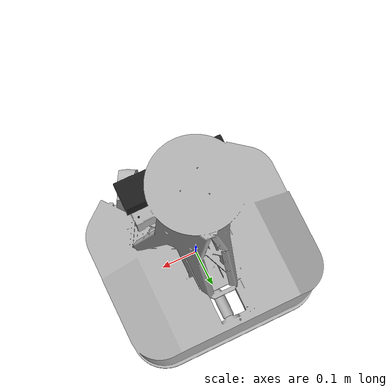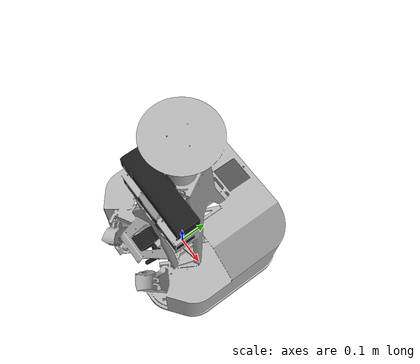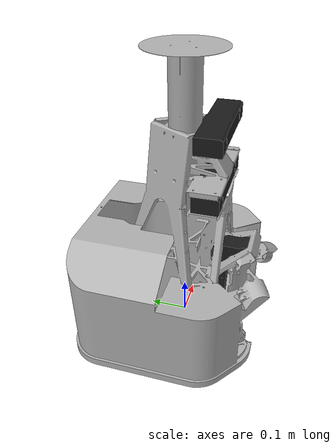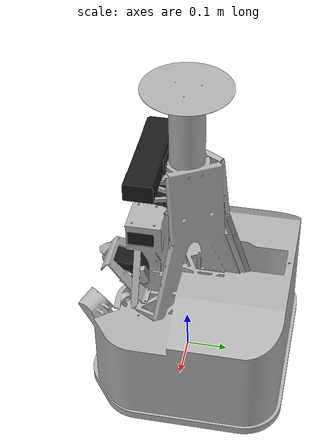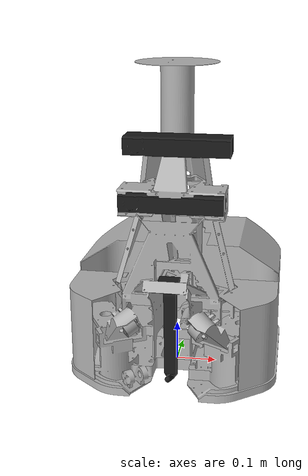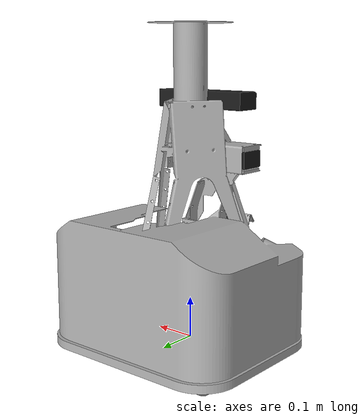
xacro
<?xml version="1.0" ?>
<robot name="rcup_urdf" xmlns:xacro="http://www.ros.org/wiki/xacro">

<xacro:include filename="$(find rcup_urdf_description)/urdf/materials.xacro" />
<xacro:include filename="$(find rcup_urdf_description)/urdf/rcup_urdf.trans" />
<xacro:include filename="$(find rcup_urdf_description)/urdf/lidar.xacro" />

<link name="base_link">
  <inertial>
    <origin xyz="-0.00165859839526905 0.016307246207622854 0.13530549609314282" rpy="0 0 0"/>
    <mass value="45.95869442945325"/>
    <inertia ixx="2.222974" iyy="2.399946" izz="1.838478" ixy="-0.009129" iyz="0.104619" ixz="-0.006104"/>
  </inertial>
  <visual>
    <origin xyz="0 0 0" rpy="0 0 0"/>
    <geometry>
      <mesh filename="package://rcup_urdf_description/meshes/base_link.stl" scale="0.001 0.001 0.001"/>
    </geometry>
    <material name="silver_default"/>
  </visual>
  <collision>
    <origin xyz="0 0 0" rpy="0 0 0"/>
    <geometry>
      <mesh filename="package://rcup_urdf_description/meshes/base_link.stl" scale="0.001 0.001 0.001"/>
    </geometry>
  </collision>
</link>

<link name="Component417_1">
  <inertial>
    <origin xyz="0.010000000000001091 -6.994287818390399e-06 -3.651771739056689e-06" rpy="0 0 0"/>
    <mass value="1.3762351375635924"/>
    <inertia ixx="0.001934" iyy="0.001007" izz="0.001019" ixy="-0.0" iyz="-0.0" ixz="0.0"/>
  </inertial>
  <visual>
    <origin xyz="-0.17 -0.167619 -0.015" rpy="0 0 0"/>
    <geometry>
      <mesh filename="package://rcup_urdf_description/meshes/Component417_1.stl" scale="0.001 0.001 0.001"/>
    </geometry>
    <material name="steel_satin"/>
  </visual>
  <collision>
    <origin xyz="-0.17 -0.167619 -0.015" rpy="0 0 0"/>
    <geometry>
      <mesh filename="package://rcup_urdf_description/meshes/Component417_1.stl" scale="0.001 0.001 0.001"/>
    </geometry>
  </collision>
</link>

<link name="wheel_v1_1">
  <inertial>
    <origin xyz="-0.010000000000000175 2.6902407044088195e-05 -7.101924573045537e-07" rpy="0 0 0"/>
    <mass value="1.3762351375635924"/>
    <inertia ixx="0.001934" iyy="0.001007" izz="0.001019" ixy="0.0" iyz="1e-06" ixz="-0.0"/>
  </inertial>
  <visual>
    <origin xyz="0.17 -0.167619 -0.015" rpy="0 0 0"/>
    <geometry>
      <mesh filename="package://rcup_urdf_description/meshes/wheel_v1_1.stl" scale="0.001 0.001 0.001"/>
    </geometry>
    <material name="steel_satin"/>
  </visual>
  <collision>
    <origin xyz="0.17 -0.167619 -0.015" rpy="0 0 0"/>
    <geometry>
      <mesh filename="package://rcup_urdf_description/meshes/wheel_v1_1.stl" scale="0.001 0.001 0.001"/>
    </geometry>
  </collision>
</link>

<link name="Component419_1">
  <inertial>
    <origin xyz="-0.010694649902391953 0.00803962610329817 0.006781847703606597" rpy="0 0 0"/>
    <mass value="0.4122786652131398"/>
    <inertia ixx="0.000106" iyy="9.9e-05" izz="9.6e-05" ixy="-1e-05" iyz="8e-06" ixz="-9e-06"/>
  </inertial>
  <visual>
    <origin xyz="-0.095008 0.214003 -0.17631" rpy="0 0 0"/>
    <geometry>
      <mesh filename="package://rcup_urdf_description/meshes/Component419_1.stl" scale="0.001 0.001 0.001"/>
    </geometry>
    <material name="steel_satin"/>
  </visual>
  <collision>
    <origin xyz="-0.095008 0.214003 -0.17631" rpy="0 0 0"/>
    <geometry>
      <mesh filename="package://rcup_urdf_description/meshes/Component419_1.stl" scale="0.001 0.001 0.001"/>
    </geometry>
  </collision>
</link>

<link name="small_roller_v1_1">
  <inertial>
    <origin xyz="0.01070386879259716 0.008003421622574586 0.006810021314246767" rpy="0 0 0"/>
    <mass value="0.41227866521313966"/>
    <inertia ixx="0.000106" iyy="9.9e-05" izz="9.6e-05" ixy="1.1e-05" iyz="8e-06" ixz="9e-06"/>
  </inertial>
  <visual>
    <origin xyz="0.095008 0.214003 -0.17631" rpy="0 0 0"/>
    <geometry>
      <mesh filename="package://rcup_urdf_description/meshes/small_roller_v1_1.stl" scale="0.001 0.001 0.001"/>
    </geometry>
    <material name="steel_satin"/>
  </visual>
  <collision>
    <origin xyz="0.095008 0.214003 -0.17631" rpy="0 0 0"/>
    <geometry>
      <mesh filename="package://rcup_urdf_description/meshes/small_roller_v1_1.stl" scale="0.001 0.001 0.001"/>
    </geometry>
  </collision>
</link>

<link name="ROD2_1.PRT_1_1">
  <inertial>
    <origin xyz="-0.025188832166870394 -0.013717609182182872 -0.08108173194304436" rpy="0 0 0"/>
    <mass value="0.8809905481847389"/>
    <inertia ixx="0.009181" iyy="0.008966" izz="0.000535" ixy="5e-06" iyz="0.000274" ixz="1.1e-05"/>
  </inertial>
  <visual>
    <origin xyz="-0.025 0.100117 -0.245868" rpy="0 0 0"/>
    <geometry>
      <mesh filename="package://rcup_urdf_description/meshes/ROD2_1.PRT_1_1.stl" scale="0.001 0.001 0.001"/>
    </geometry>
    <material name="opaque272727"/>
  </visual>
  <collision>
    <origin xyz="-0.025 0.100117 -0.245868" rpy="0 0 0"/>
    <geometry>
      <mesh filename="package://rcup_urdf_description/meshes/ROD2_1.PRT_1_1.stl" scale="0.001 0.001 0.001"/>
    </geometry>
  </collision>
</link>

<link name="wheel_v1__1__1">
  <inertial>
    <origin xyz="-0.01000000000055598 -9.92925203154027e-06 -9.515285584092703e-06" rpy="0 0 0"/>
    <mass value="1.3762351375635922"/>
    <inertia ixx="0.001935" iyy="0.001008" izz="0.001019" ixy="0.0" iyz="1e-06" ixz="-0.0"/>
  </inertial>
  <visual>
    <origin xyz="-0.17 0.078381 -0.015" rpy="0 0 0"/>
    <geometry>
      <mesh filename="package://rcup_urdf_description/meshes/wheel_v1__1__1.stl" scale="0.001 0.001 0.001"/>
    </geometry>
    <material name="steel_satin"/>
  </visual>
  <collision>
    <origin xyz="-0.17 0.078381 -0.015" rpy="0 0 0"/>
    <geometry>
      <mesh filename="package://rcup_urdf_description/meshes/wheel_v1__1__1.stl" scale="0.001 0.001 0.001"/>
    </geometry>
  </collision>
</link>

<link name="wheel_v1__2__1">
  <inertial>
    <origin xyz="-0.009999999999999842 -9.16713600328245e-06 3.0933208643169063e-06" rpy="0 0 0"/>
    <mass value="1.3762351375635922"/>
    <inertia ixx="0.001936" iyy="0.001009" izz="0.001019" ixy="-0.0" iyz="-0.0" ixz="0.0"/>
  </inertial>
  <visual>
    <origin xyz="0.17 0.078381 -0.0125" rpy="0 0 0"/>
    <geometry>
      <mesh filename="package://rcup_urdf_description/meshes/wheel_v1__2__1.stl" scale="0.001 0.001 0.001"/>
    </geometry>
    <material name="steel_satin"/>
  </visual>
  <collision>
    <origin xyz="0.17 0.078381 -0.0125" rpy="0 0 0"/>
    <geometry>
      <mesh filename="package://rcup_urdf_description/meshes/wheel_v1__2__1.stl" scale="0.001 0.001 0.001"/>
    </geometry>
  </collision>
</link>

<joint name="Revolute 1" type="continuous">
  <origin xyz="0.17 0.167619 0.015" rpy="0 0 0"/>
  <parent link="base_link"/>
  <child link="Component417_1"/>
  <axis xyz="-1.0 0.0 0.0"/>
</joint>

<joint name="Revolute 2" type="continuous">
  <origin xyz="-0.17 0.167619 0.015" rpy="0 0 0"/>
  <parent link="base_link"/>
  <child link="wheel_v1_1"/>
  <axis xyz="-1.0 0.0 0.0"/>
</joint>

<joint name="Revolute 5" type="continuous">
  <origin xyz="0.095008 -0.214003 0.17631" rpy="0 0 0"/>
  <parent link="base_link"/>
  <child link="Component419_1"/>
  <axis xyz="0.713077 -0.534564 -0.453611"/>
</joint>

<joint name="Revolute 6" type="continuous">
  <origin xyz="-0.095008 -0.214003 0.17631" rpy="0 0 0"/>
  <parent link="base_link"/>
  <child link="small_roller_v1_1"/>
  <axis xyz="-0.713077 -0.534564 -0.453611"/>
</joint>

<joint name="Revolute 7" type="continuous">
  <origin xyz="0.025 -0.100117 0.245868" rpy="0 0 0"/>
  <parent link="base_link"/>
  <child link="ROD2_1.PRT_1_1"/>
  <axis xyz="1.0 -0.0 0.0"/>
</joint>

<joint name="Revolute 8" type="continuous">
  <origin xyz="0.17 -0.078381 0.015" rpy="0 0 0"/>
  <parent link="base_link"/>
  <child link="wheel_v1__1__1"/>
  <axis xyz="-1.0 0.0 0.0"/>
</joint>

<joint name="Revolute 9" type="continuous">
  <origin xyz="-0.17 -0.078381 0.0125" rpy="0 0 0"/>
  <parent link="base_link"/>
  <child link="wheel_v1__2__1"/>
  <axis xyz="-1.0 0.0 -0.0"/>
</joint>

</robot>

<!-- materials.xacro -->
<robot name="rcup_urdf" xmlns:xacro="http://www.ros.org/wiki/xacro" >

<material name="silver_default">
  <color rgba="0.700 0.700 0.700 1.000"/>
</material>
<material name="steel_satin">
  <color rgba="0.6274509803921569 0.6274509803921569 0.6274509803921569 1.0"/>
</material>
<material name="opaque272727">
  <color rgba="0.10588235294117647 0.10588235294117647 0.10588235294117647 1.0"/>
</material>

</robot>

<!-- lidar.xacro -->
<robot name="rcup_urdf" xmlns:xacro="http://www.ros.org/wiki/xacro">

<joint name="laser_joint" type="fixed">
  <origin xyz="0.0 -0.11115 0.467009" rpy="0 0 0"/>
  <parent link="base_link"/>
  <child link="kinect_1"/>
</joint>

<link name="kinect_1">
  <inertial>
    <origin xyz="8.07978825644895e-05 0.03307821422428597 -0.01854148491227281" rpy="0 0 0"/>
    <mass value="5.665239174580644"/>
    <inertia ixx="0.002961" iyy="0.029846" izz="0.031012" ixy="1.5e-05" iyz="-0.0" ixz="0.0"/>
  </inertial>
  <visual>
    <origin xyz="0.0 0.11115 -0.467009" rpy="0 0 0"/>
    <geometry>
      <mesh filename="package://rcup_urdf_description/meshes/kinect_1.stl" scale="0.001 0.001 0.001"/>
    </geometry>
    <material name="opaque272727"/>
  </visual>
  <collision>
    <origin xyz="0.0 0.11115 -0.467009" rpy="0 0 0"/>
    <geometry>
      <mesh filename="package://rcup_urdf_description/meshes/kinect_1.stl" scale="0.001 0.001 0.001"/>
    </geometry>
  </collision>
</link>

<gazebo reference="kinect_1">
        <material>Gazebo/Orange</material>

        <sensor name="laser" type="ray">
            <pose> 0 0 0 0 0 0 </pose>
            <visualize>true</visualize>
            <update_rate>10</update_rate>
            <ray>
                <scan>
                    <horizontal>
                        <samples>360</samples>
                        <min_angle>-3.14</min_angle>
                        <max_angle>3.14</max_angle>
                    </horizontal>
                </scan>
                <range>
                    <min>0.3</min>
                    <max>12</max>
                </range>
            </ray>
            <plugin name="laser_controller" filename="libgazebo_ros_ray_sensor.so">
                <ros>
                    <argument>~/out:=scan</argument>
                </ros>
                <output_type>sensor_msgs/LaserScan</output_type>
                <frame_name>kinect_1</frame_name>
            </plugin>
        </sensor>
    </gazebo>

    <joint name = "camera_joint" type ="fixed">
        <parent link ="kinect_1"/>
        <child link ="camera_link"/>
        <origin xyz = "0 0 0.1" rpy= "0 0 0"/>
    </joint>

    <link name="camera_link">
        <inertial>
            <origin xyz="0.014151805869357915 0.032943270937617994 0.018026687074977843" rpy="0 0 0"/>
            <mass value="5.688103261975597"/>
            <inertia ixx="0.00299" iyy="0.029925" izz="0.031113" ixy="2.9e-05" iyz="-1e-06" ixz="0.0"/>
        </inertial>
        <visual>
            <origin xyz="0.014 0.11115 -0.430009" rpy="0 0 0"/>
            <geometry>
               <mesh filename="package://rcup_urdf_description/meshes/kinect_1.stl" scale="0.001 0.001 0.001"/>
            </geometry>
            <material name="opaque272727"/>
        </visual>
        <collision>
            <origin xyz="0.014 0.11115 -0.430009" rpy="0 0 0"/>
            <geometry>
                <mesh filename="package://rcup_urdf_description/meshes/kinect_1.stl" scale="0.0005 0.001 0.001"/>
            </geometry>
        </collision>
    </link>

    <joint name = "camera_optical_joint" type ="fixed">
        <parent link ="camera_link"/>
        <child link ="camera_link_optical"/>
        <origin xyz = "0 0 0" rpy= "-0.707 0 -0.707"/>
    </joint>

    <link name="camera_link_optical"></link>

    <gazebo reference="camera_link">
        <material>Gazebo/Orange</material>

        <sensor name="camera" type="camera">
            <pose> 0 0 0 0 0 0 </pose>
            <visualize>true</visualize>
            <update_rate>10</update_rate>
            <camera>
                <horizontal_fov>1.089</horizontal_fov>
                <image>
                    <format>R8G8B8</format>
                    <width>640</width>
                    <height>480</height>
                </image>
                <clip>
                    <near>0.05</near>
                    <far>8.0</far>
                </clip>
            </camera>
            <plugin name="camera_controller" filename="libgazebo_ros_camera.so">
                <frame_name>camera_link_optical</frame_name>
            </plugin>
        </sensor>
    </gazebo>
</robot>
